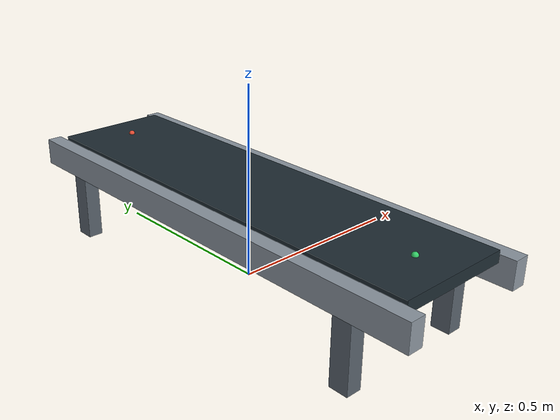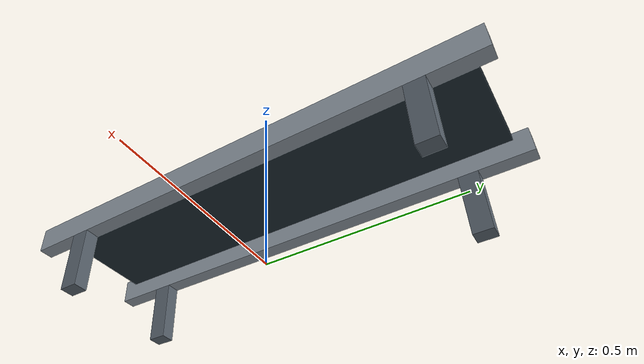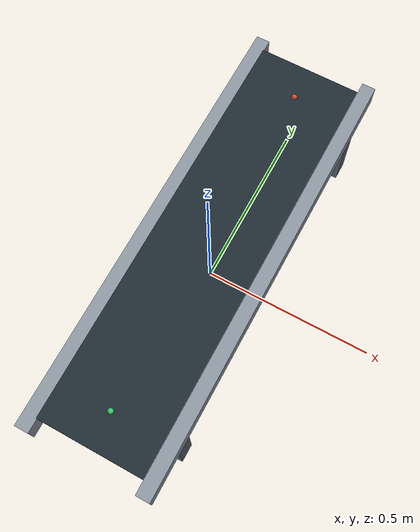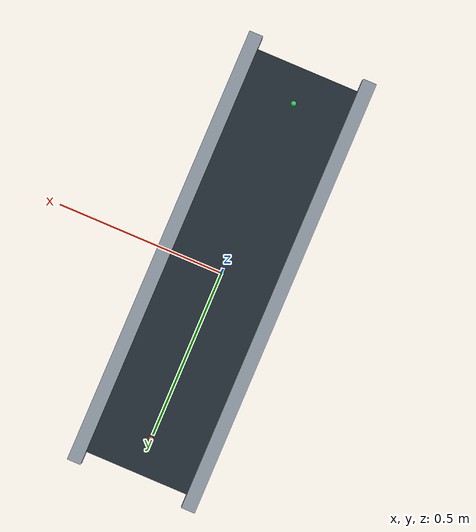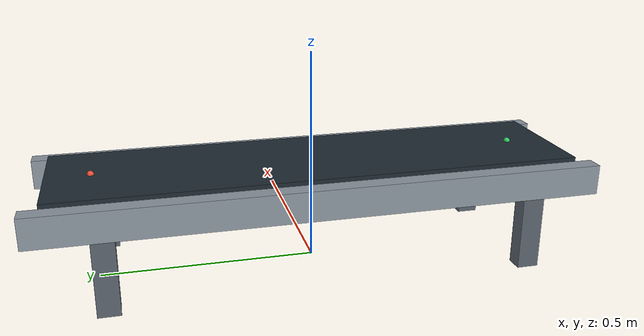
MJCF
<mujoco model="straight_conveyor">
  <worldbody>
    <body name="conveyor">
      <geom name="conveyor_belt" type="box" pos="0 0 0.235"
            size="0.15 0.60 0.015" friction="0.8 0.005 0.0001"
            rgba="0.12 0.17 0.20 1"/>

      <!-- Frame edges stay below the belt surface for gripper clearance. -->
      <geom name="conveyor_frame_left" type="box" pos="-0.17 0 0.205"
            size="0.02 0.64 0.035" rgba="0.55 0.59 0.63 1"/>
      <geom name="conveyor_frame_right" type="box" pos="0.17 0 0.205"
            size="0.02 0.64 0.035" rgba="0.55 0.59 0.63 1"/>
      <geom name="conveyor_leg_1" type="box" pos="-0.17 -0.48 0.085"
            size="0.02 0.025 0.085" rgba="0.35 0.39 0.43 1"/>
      <geom name="conveyor_leg_2" type="box" pos="0.17 -0.48 0.085"
            size="0.02 0.025 0.085" rgba="0.35 0.39 0.43 1"/>
      <geom name="conveyor_leg_3" type="box" pos="-0.17 0.48 0.085"
            size="0.02 0.025 0.085" rgba="0.35 0.39 0.43 1"/>
      <geom name="conveyor_leg_4" type="box" pos="0.17 0.48 0.085"
            size="0.02 0.025 0.085" rgba="0.35 0.39 0.43 1"/>

      <!-- Markers only: sites do not create collision geometry. -->
      <site name="conveyor_entry" pos="0 -0.5 0.251" size="0.008" rgba="0.2 0.8 0.4 1"/>
      <site name="conveyor_exit" pos="0 0.5 0.251" size="0.008" rgba="0.9 0.3 0.2 1"/>
    </body>
  </worldbody>
</mujoco>
